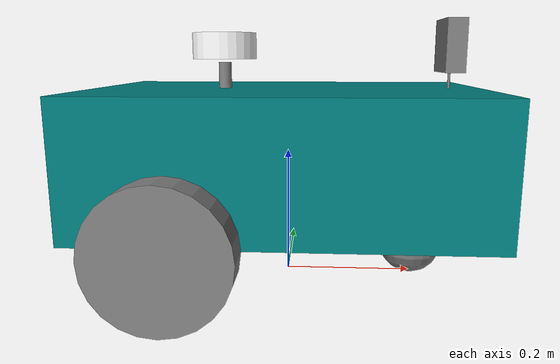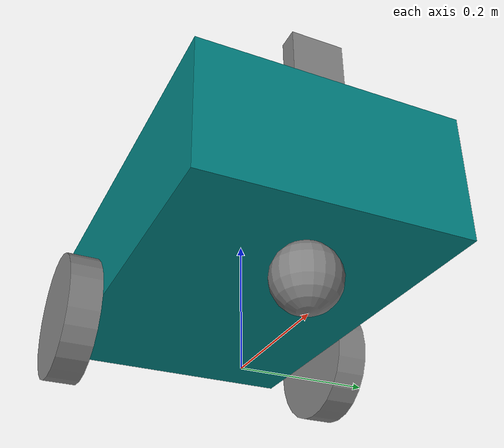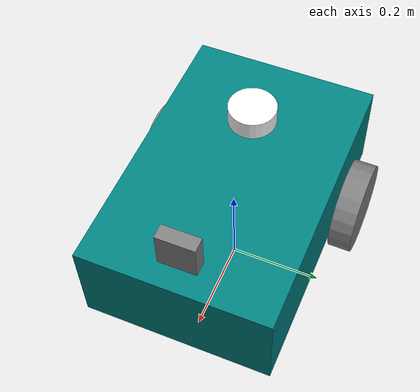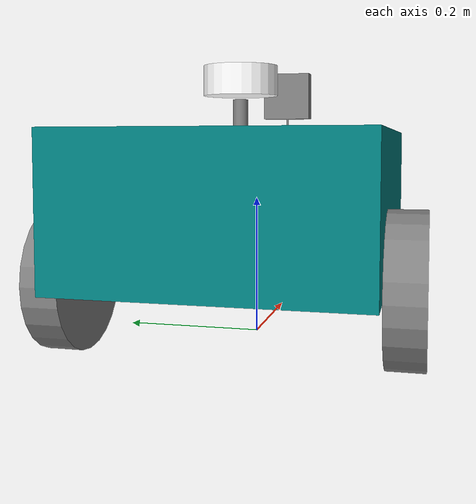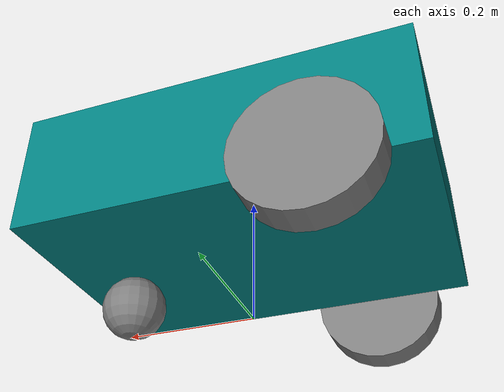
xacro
<?xml version="1.0"?>
<robot name="my_robot" xmlns:xacro="http://www.ros.org/wiki/xacro">

    <xacro:include filename="common_properties.xacro" />
    <xacro:include filename="mobile_base.xacro" />
    <xacro:include filename="mobile_base_gazebo.xacro" />

    <xacro:include filename="lidar.xacro" />

    <xacro:include filename="ros2_control.xacro" />

    <xacro:include filename="camera.xacro" />

</robot>

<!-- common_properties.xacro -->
<robot xmlns:xacro="http://www.ros.org/wiki/xacro">

    <material name="blue">
        <color rgba="0 0.5 0.5 1" />
    </material>

    <material name="grey">
        <color rgba="0.5 0.5 0.5 1" />
    </material>

    <material name="white">
        <color rgba="1 1 1 1" />
    </material>

    <xacro:macro name="box_inertia" params="m l w h xyz rpy">
        <inertial>
            <origin xyz="${xyz}" rpy="${rpy}" />
            <mass value="${m}" />
            <inertia ixx="${(m/12) * (h*h + l*l)}" ixy="0" ixz="0"
                     iyy="${(m/12) * (w*w + l*l)}" iyz="0"
                     izz="${(m/12) * (w*w + h*h)}" />
        </inertial>
    </xacro:macro>

    <xacro:macro name="cylinder_inertia" params="m r h xyz rpy">
        <inertial>
            <origin xyz="${xyz}" rpy="${rpy}" />
            <mass value="${m}" />
            <inertia ixx="${(m/12) * (3*r*r + h*h)}" ixy="0" ixz="0"
                     iyy="${(m/12) * (3*r*r + h*h)}" iyz="0"
                     izz="${(m/2) * (r*r)}" />
        </inertial>
    </xacro:macro>

    <xacro:macro name="sphere_inertia" params="m r xyz rpy">
        <inertial>
            <origin xyz="${xyz}" rpy="${rpy}" />
            <mass value="${m}" />
            <inertia ixx="${(2/5) * m * r * r}" ixy="0" ixz="0"
                     iyy="${(2/5) * m * r * r}" iyz="0"
                     izz="${(2/5) * m * r * r}" />
        </inertial>
    </xacro:macro>

</robot>

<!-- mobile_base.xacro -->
<robot xmlns:xacro="http://www.ros.org/wiki/xacro">

    <xacro:property name="base_length" value="0.6" />
    <xacro:property name="base_width" value="0.4" />
    <xacro:property name="base_height" value="0.2" />
    <xacro:property name="wheel_radius" value="0.1" />
    <xacro:property name="wheel_length" value="0.05" />

    <link name="base_footprint" />

    <joint name="new_base_joint" type="fixed">
        <parent link="base_footprint"/>
        <child link="new_base"/>
        <origin xyz="0 0 0" rpy="0 0 0"/>
    </joint>

    <link name="new_base">
    </link>

    <link name="base_link">
        <visual>
            <geometry>
                <box size="${base_length} ${base_width} ${base_height}" />
            </geometry>
            <origin xyz="0 0 ${base_height / 2.0}" rpy="0 0 0" />
            <material name="blue" />
        </visual>
        <collision>
            <geometry>
                <box size="${base_length} ${base_width} ${base_height}" />
            </geometry>
            <origin xyz="0 0 ${base_height / 2.0}" rpy="0 0 0" />
        </collision>
        <xacro:box_inertia m="5.0" l="${2*base_length}" w="${2*base_width}" h="${2*base_height}"
                           xyz="0 0 ${base_height / 2.0}" rpy="0 0 0" />
    </link>

    <xacro:macro name="wheel_link" params="prefix">
        <link name="${prefix}_wheel_link">
            <visual>
                <geometry>
                    <cylinder radius="${wheel_radius}" length="${wheel_length}" />
                </geometry>
                <origin xyz="0 0 0" rpy="${pi / 2.0} 0 0" />
                <material name="grey" />
            </visual>
            <collision>
                <geometry>
                    <cylinder radius="${wheel_radius}" length="${wheel_length}" />
                </geometry>
                <origin xyz="0 0 0" rpy="${pi / 2.0} 0 0" />
            </collision>
            <xacro:cylinder_inertia m="1.0" r="${2*wheel_radius}" h="${2*wheel_length}"
                                    xyz="0 0 0" rpy="${pi / 2.0} 0 0" />

        </link>
    </xacro:macro>

    <xacro:wheel_link prefix="right" />
    <xacro:wheel_link prefix="left" />

    <link name="caster_wheel_link">
        <visual>
            <geometry>
                <sphere radius="${wheel_radius / 2.0}" />
            </geometry>
            <origin xyz="0 0 0" rpy="0 0 0" />
            <material name="grey" />
        </visual>
        <collision>
            <geometry>
                <sphere radius="${wheel_radius / 2.0}" />
            </geometry>
            <origin xyz="0 0 0" rpy="0 0 0" />
        </collision>
        <xacro:sphere_inertia m="0.5" r="${2*wheel_radius / 2.0}"
                              xyz="0 0 0" rpy="0 0 0" />
    </link>

    <joint name="base_joint" type="fixed">
        <parent link="base_footprint" />
        <child link="base_link" />
        <origin xyz="0 0 ${wheel_radius}" rpy="0 0 0"/>
    </joint>

    <joint name="base_right_wheel_joint" type="continuous">
        <parent link="base_link" />
        <child link="right_wheel_link" />
        <origin xyz="${-base_length / 4.0} ${-(base_width + wheel_length) / 2.0} 0" rpy="0 0 0" />
        <axis xyz="0 1 0" />
    </joint>

    <joint name="base_left_wheel_joint" type="continuous">
        <parent link="base_link" />
        <child link="left_wheel_link" />
        <origin xyz="${-base_length / 4.0} ${(base_width + wheel_length) / 2.0} 0" rpy="0 0 0" />
        <axis xyz="0 1 0" />
    </joint>

    <joint name="base_caster_wheel_joint" type="fixed">
        <parent link="base_link" />
        <child link="caster_wheel_link" />
        <origin xyz="${base_length / 3.0} 0 ${-wheel_radius / 2.0}" rpy="0 0 0" />
    </joint>

</robot>

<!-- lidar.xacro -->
<robot xmlns:xacro="http://www.ros.org/wiki/xacro" >

    <joint name="laser_joint" type="fixed">
        <parent link="base_link"/>
        <child link="laser_frame"/>
        <origin xyz="-0.1 0 0.265" rpy="0 0 0"/>
    </joint>

    <link name="laser_frame">
        <visual>
            <geometry>
                <cylinder radius="0.05" length="0.04"/>
            </geometry>
            <material name="white"/>
        </visual>
        <visual>
            <origin xyz="0 0 -0.05"/>
            <geometry>
                <cylinder radius="0.01" length="0.05"/>
            </geometry>
            <material name="grey"/>
        </visual>
        <collision>
            <geometry>
                <cylinder radius="0.05" length="0.04"/>
            </geometry>
        </collision>
        <xacro:cylinder_inertia m="0.1" r="0.05" h="0.04" xyz="0 0 0" rpy="0 0 0"/>

    </link>

    <gazebo reference="laser_frame">
        <sensor name="laser" type="ray">
            <pose> 0 0 0 0 0 0 </pose>
            <visualize>false</visualize>
            <update_rate>10</update_rate>
            <ray>
                <scan>
                    <horizontal>
                        <samples>180</samples>
                        <resolution>1</resolution>
                        <min_angle>-3.14</min_angle>
                        <max_angle>3.14</max_angle>
                    </horizontal>
                </scan>
                <range>
                    <min>0.3</min>
                    <max>12</max>
                    <resolution>0.01</resolution>
                </range>
            </ray>
            <plugin name="laser_controller" filename="libgazebo_ros_ray_sensor.so">
                <ros>
                    <argument>~/out:=scan</argument>
                </ros>
                <output_type>sensor_msgs/LaserScan</output_type>
                <frame_name>laser_frame</frame_name>
            </plugin>
        </sensor>
    </gazebo>

</robot>

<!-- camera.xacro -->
<robot xmlns:xacro="http://www.ros.org/wiki/xacro" >

    <joint name="camera_joint" type="fixed">
        <parent link="base_link"/>
        <child link="camera_link"/>
        <origin xyz="0.25 0 0.265" rpy="0 0 0"/>
    </joint>

    <link name="camera_link">
        <visual>
            <geometry>
                <box size="0.03 0.08 0.08"/>
            </geometry>
            <material name="grey"/>
        </visual>
        <visual>
            <origin xyz="0 0 -0.05"/>
            <geometry>
                <cylinder radius="0.002" length="0.05"/>
            </geometry>
            <material name="grey"/>
        </visual>
    </link>

    <joint name="camera_optical_joint" type="fixed">
        <parent link="camera_link"/>
        <child link="camera_link_optical"/>
        <origin xyz="0 0 0" rpy="${-pi/2} 0 ${-pi/2}"/>
    </joint>

    <link name="camera_link_optical"></link>

    <gazebo reference="camera_link">
        <material>Gazebo/Grey</material>

        <sensor name="camera" type="camera">
            <pose> 0 0 0 0 0 0 </pose>
            <visualize>true</visualize>
            <update_rate>10</update_rate>
            <camera>
                <horizontal_fov>1.089</horizontal_fov>
                <image>
                    <format>R8G8B8</format>
                    <width>640</width>
                    <height>480</height>
                </image>
                <clip>
                    <near>0.05</near>
                    <far>8.0</far>
                </clip>
            </camera>
            <plugin name="camera_controller" filename="libgazebo_ros_camera.so">
                <frame_name>camera_link_optical</frame_name>
            </plugin>
        </sensor>
    </gazebo>

</robot>
